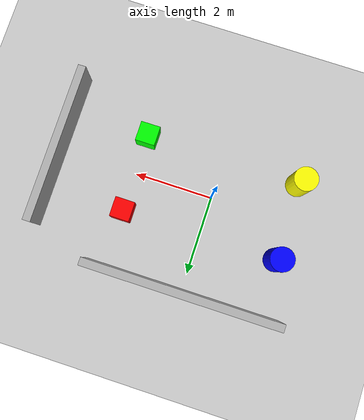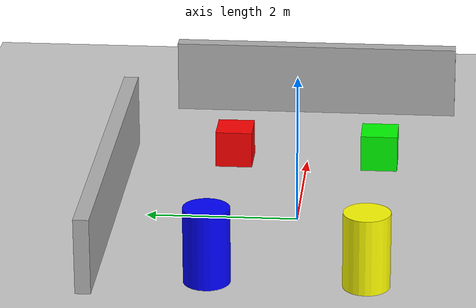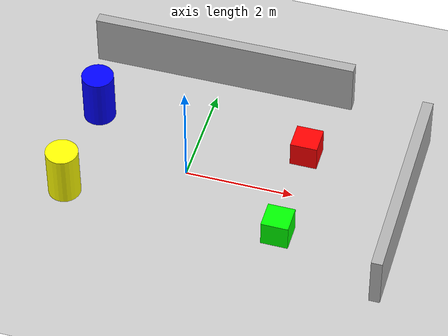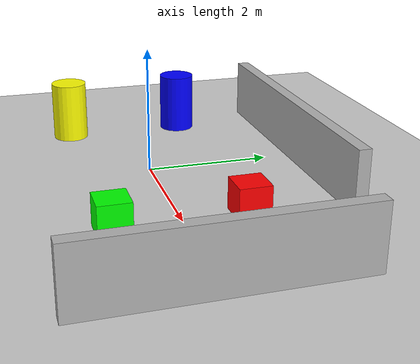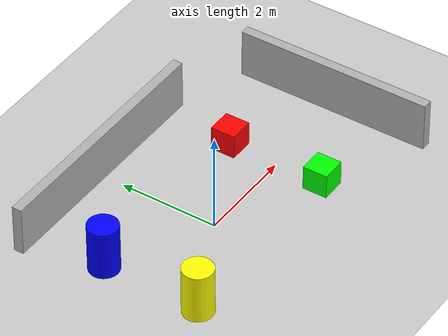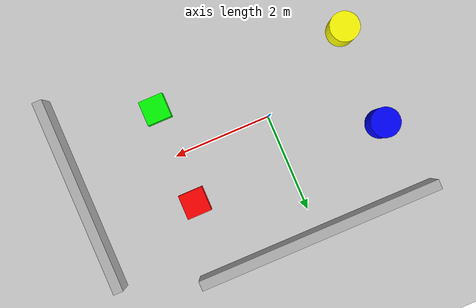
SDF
<?xml version="1.0" ?>
<sdf version="1.8">
  <world name="test_environment">

    <!-- Physics -->
    <physics name="1ms" type="ignored">
      <max_step_size>0.001</max_step_size>
      <real_time_factor>1.0</real_time_factor>
    </physics>

    <!-- Plugins -->
    <plugin
      filename="ignition-gazebo-physics-system"
      name="ignition::gazebo::systems::Physics">
    </plugin>
    <plugin
      filename="ignition-gazebo-user-commands-system"
      name="ignition::gazebo::systems::UserCommands">
    </plugin>
    <plugin
      filename="ignition-gazebo-scene-broadcaster-system"
      name="ignition::gazebo::systems::SceneBroadcaster">
    </plugin>

    <!-- Lighting -->
    <light type="directional" name="sun">
      <cast_shadows>true</cast_shadows>
      <pose>0 0 10 0 0 0</pose>
      <diffuse>0.8 0.8 0.8 1</diffuse>
      <specular>0.2 0.2 0.2 1</specular>
      <attenuation>
        <range>1000</range>
        <constant>0.9</constant>
        <linear>0.01</linear>
        <quadratic>0.001</quadratic>
      </attenuation>
      <direction>-0.5 0.1 -0.9</direction>
    </light>

    <!-- Ground Plane -->
    <model name="ground_plane">
      <static>true</static>
      <link name="link">
        <collision name="collision">
          <geometry>
            <plane>
              <normal>0 0 1</normal>
              <size>100 100</size>
            </plane>
          </geometry>
        </collision>
        <visual name="visual">
          <geometry>
            <plane>
              <normal>0 0 1</normal>
              <size>100 100</size>
            </plane>
          </geometry>
          <material>
            <ambient>0.8 0.8 0.8 1</ambient>
            <diffuse>0.8 0.8 0.8 1</diffuse>
            <specular>0.8 0.8 0.8 1</specular>
          </material>
        </visual>
      </link>
    </model>

    <!-- Box obstacle 1 -->
    <model name="box1">
      <pose>2 1 0.25 0 0 0</pose>
      <static>true</static>
      <link name="link">
        <collision name="collision">
          <geometry>
            <box>
              <size>0.5 0.5 0.5</size>
            </box>
          </geometry>
        </collision>
        <visual name="visual">
          <geometry>
            <box>
              <size>0.5 0.5 0.5</size>
            </box>
          </geometry>
          <material>
            <ambient>1 0 0 1</ambient>
            <diffuse>1 0 0 1</diffuse>
            <specular>0.5 0.5 0.5 1</specular>
          </material>
        </visual>
      </link>
    </model>

    <!-- Box obstacle 2 -->
    <model name="box2">
      <pose>2 -1 0.25 0 0 0</pose>
      <static>true</static>
      <link name="link">
        <collision name="collision">
          <geometry>
            <box>
              <size>0.5 0.5 0.5</size>
            </box>
          </geometry>
        </collision>
        <visual name="visual">
          <geometry>
            <box>
              <size>0.5 0.5 0.5</size>
            </box>
          </geometry>
          <material>
            <ambient>0 1 0 1</ambient>
            <diffuse>0 1 0 1</diffuse>
            <specular>0.5 0.5 0.5 1</specular>
          </material>
        </visual>
      </link>
    </model>

    <!-- Cylinder obstacle 1 -->
    <model name="cylinder1">
      <pose>-2 1 0.5 0 0 0</pose>
      <static>true</static>
      <link name="link">
        <collision name="collision">
          <geometry>
            <cylinder>
              <radius>0.3</radius>
              <length>1.0</length>
            </cylinder>
          </geometry>
        </collision>
        <visual name="visual">
          <geometry>
            <cylinder>
              <radius>0.3</radius>
              <length>1.0</length>
            </cylinder>
          </geometry>
          <material>
            <ambient>0 0 1 1</ambient>
            <diffuse>0 0 1 1</diffuse>
            <specular>0.5 0.5 0.5 1</specular>
          </material>
        </visual>
      </link>
    </model>

    <!-- Cylinder obstacle 2 -->
    <model name="cylinder2">
      <pose>-2 -1 0.5 0 0 0</pose>
      <static>true</static>
      <link name="link">
        <collision name="collision">
          <geometry>
            <cylinder>
              <radius>0.3</radius>
              <length>1.0</length>
            </cylinder>
          </geometry>
        </collision>
        <visual name="visual">
          <geometry>
            <cylinder>
              <radius>0.3</radius>
              <length>1.0</length>
            </cylinder>
          </geometry>
          <material>
            <ambient>1 1 0 1</ambient>
            <diffuse>1 1 0 1</diffuse>
            <specular>0.5 0.5 0.5 1</specular>
          </material>
        </visual>
      </link>
    </model>

    <!-- Wall 1 -->
    <model name="wall1">
      <pose>4 0 0.5 0 0 0</pose>
      <static>true</static>
      <link name="link">
        <collision name="collision">
          <geometry>
            <box>
              <size>0.2 4 1.0</size>
            </box>
          </geometry>
        </collision>
        <visual name="visual">
          <geometry>
            <box>
              <size>0.2 4 1.0</size>
            </box>
          </geometry>
          <material>
            <ambient>0.7 0.7 0.7 1</ambient>
            <diffuse>0.7 0.7 0.7 1</diffuse>
            <specular>0.3 0.3 0.3 1</specular>
          </material>
        </visual>
      </link>
    </model>

    <!-- Wall 2 -->
    <model name="wall2">
      <pose>0 2.5 0.5 0 0 1.5708</pose>
      <static>true</static>
      <link name="link">
        <collision name="collision">
          <geometry>
            <box>
              <size>0.2 5 1.0</size>
            </box>
          </geometry>
        </collision>
        <visual name="visual">
          <geometry>
            <box>
              <size>0.2 5 1.0</size>
            </box>
          </geometry>
          <material>
            <ambient>0.7 0.7 0.7 1</ambient>
            <diffuse>0.7 0.7 0.7 1</diffuse>
            <specular>0.3 0.3 0.3 1</specular>
          </material>
        </visual>
      </link>
    </model>

  </world>
</sdf>
